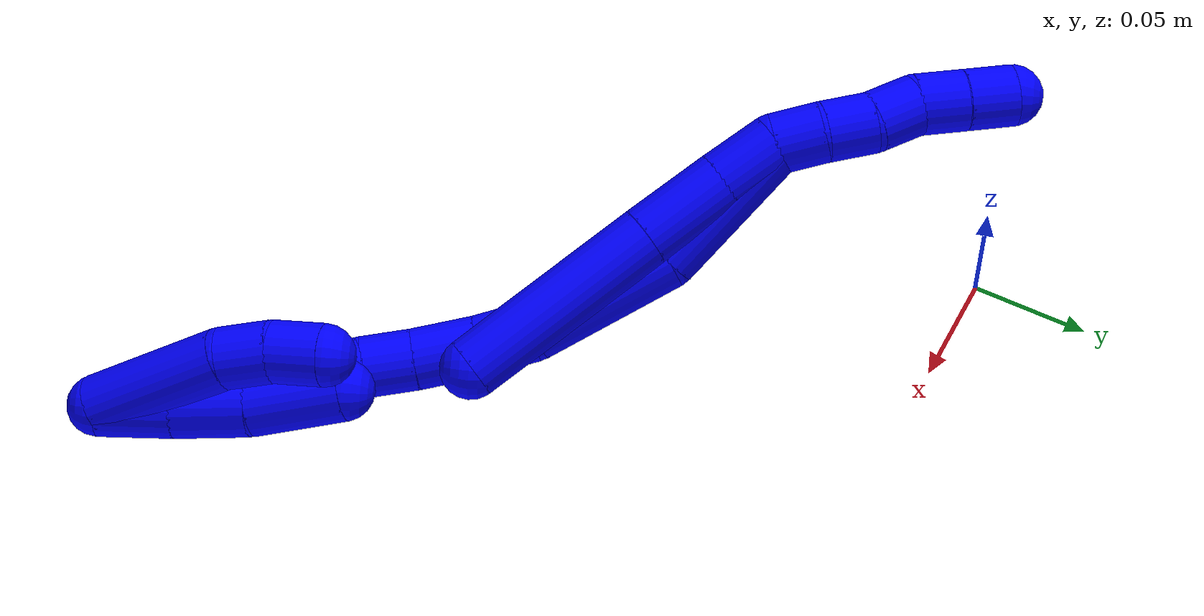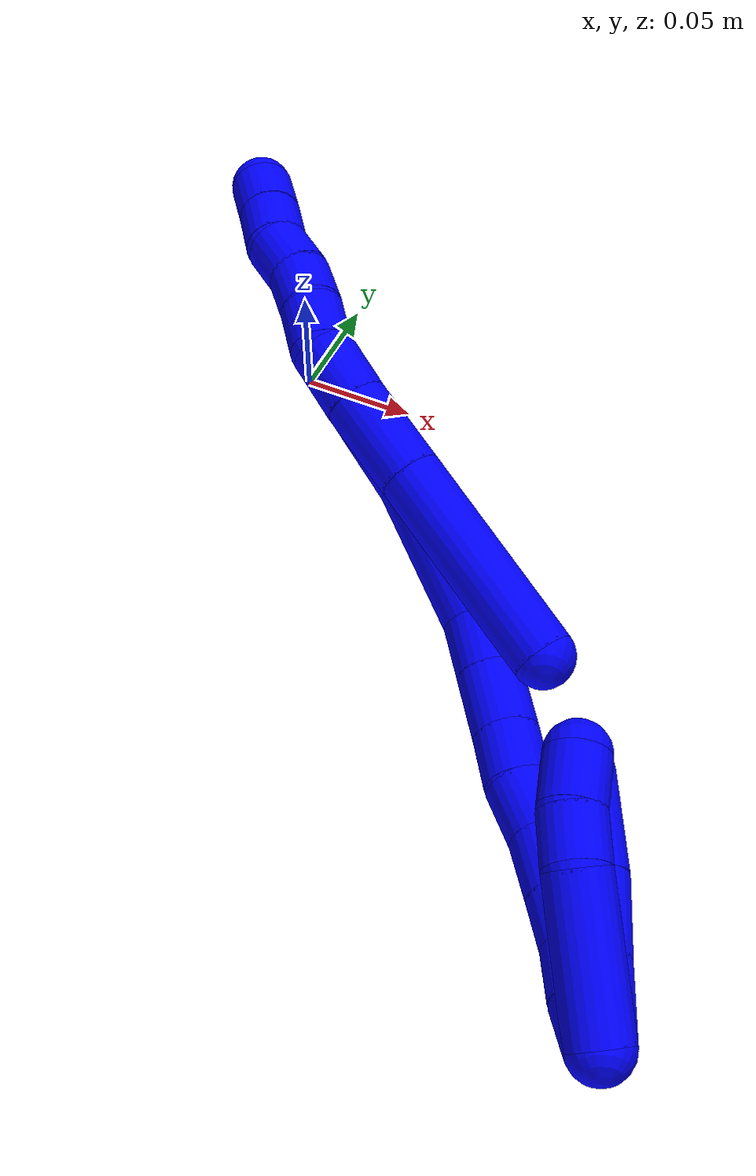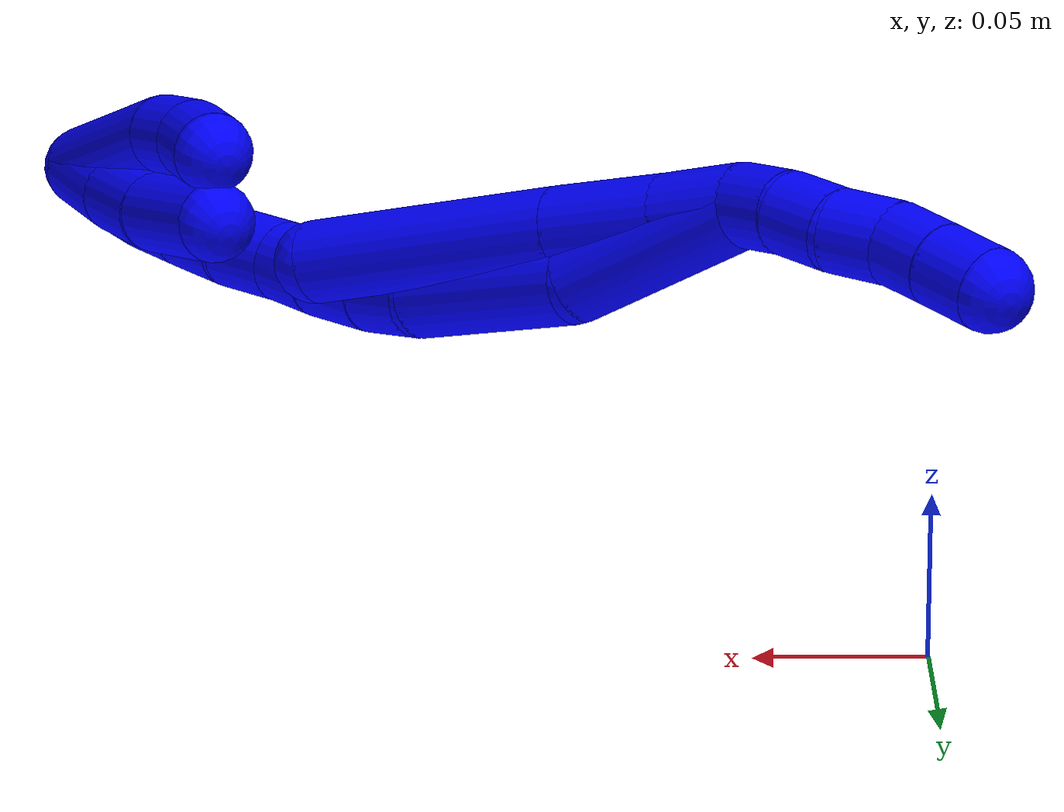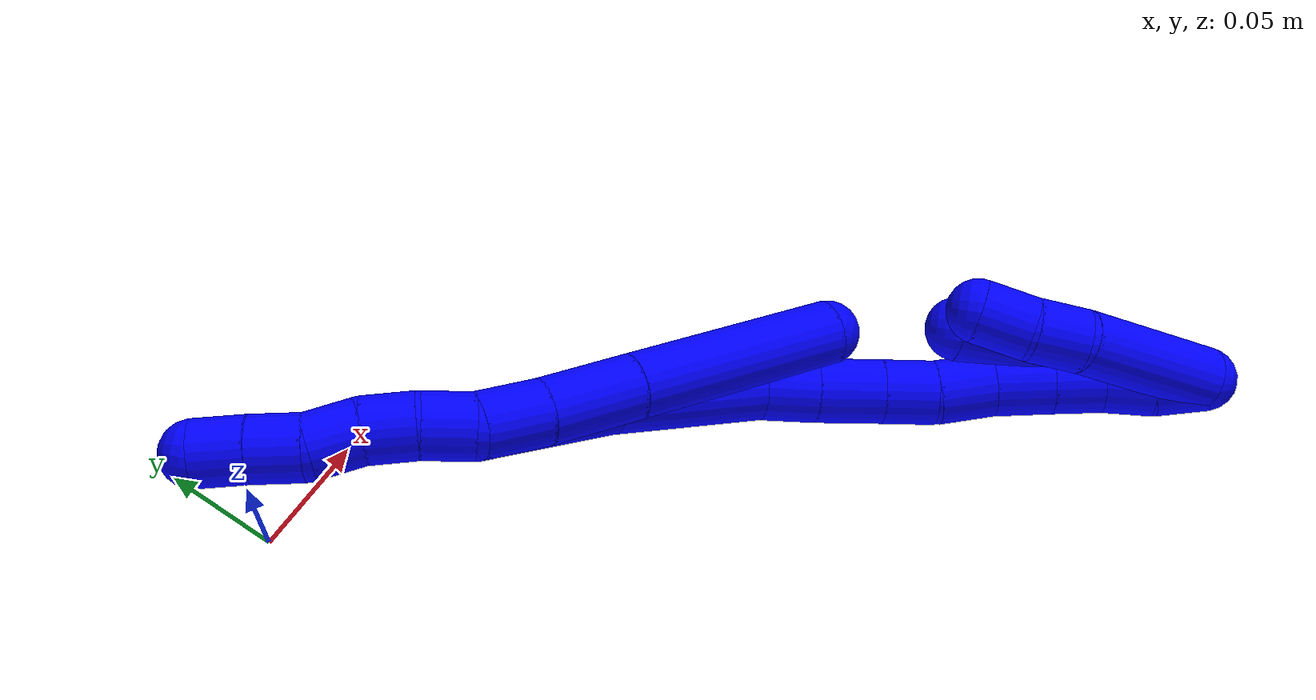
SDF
<sdf version="1.7">
 <world name="default">
  <model name="1">
   <static>0</static>
   <link name="1">
    <collision name="collision-cylinder-e_1_2_8">
     <pose>0.007431 -0.004116 0.010105 0.386776 0.597915 0.120565</pose>
     <geometry><cylinder><radius>0.0125</radius><length>0.026403</length></cylinder></geometry>
     <surface>
      <friction><ode><mu>1.16</mu><mu2>1.16</mu2><slip1>0</slip1><slip2>0</slip2></ode></friction>
      <contact><ode><kp>1e+06</kp><kd>1</kd><max_vel>0</max_vel><min_depth>0.001</min_depth></ode></contact>
     </surface>
    </collision>
    <visual name="visual-cylinder-e_1_2_8">
     <pose>0.007431 -0.004116 0.010105 0.386776 0.597915 0.120565</pose>
     <geometry><cylinder><radius>0.0125</radius><length>0.026403</length></cylinder></geometry>
     <material><ambient>0 0 1 1</ambient></material>
    </visual>
    <collision name="collision-cylinder-e_2_8_9">
     <pose>0.026114 -0.013384 0.034146 0.354175 0.648137 0.120086</pose>
     <geometry><cylinder><radius>0.0125</radius><length>0.037274</length></cylinder></geometry>
     <surface>
      <friction><ode><mu>1.16</mu><mu2>1.16</mu2><slip1>0</slip1><slip2>0</slip2></ode></friction>
      <contact><ode><kp>1e+06</kp><kd>1</kd><max_vel>0</max_vel><min_depth>0.001</min_depth></ode></contact>
     </surface>
    </collision>
    <visual name="visual-cylinder-e_2_8_9">
     <pose>0.026114 -0.013384 0.034146 0.354175 0.648137 0.120086</pose>
     <geometry><cylinder><radius>0.0125</radius><length>0.037274</length></cylinder></geometry>
     <material><ambient>0 0 1 1</ambient></material>
    </visual>
    <collision name="collision-cylinder-e_3_9_6">
     <pose>0.063539 -0.031241 0.079964 0.379162 0.651533 0.129457</pose>
     <geometry><cylinder><radius>0.0125</radius><length>0.086323</length></cylinder></geometry>
     <surface>
      <friction><ode><mu>1.16</mu><mu2>1.16</mu2><slip1>0</slip1><slip2>0</slip2></ode></friction>
      <contact><ode><kp>1e+06</kp><kd>1</kd><max_vel>0</max_vel><min_depth>0.001</min_depth></ode></contact>
     </surface>
    </collision>
    <visual name="visual-cylinder-e_3_9_6">
     <pose>0.063539 -0.031241 0.079964 0.379162 0.651533 0.129457</pose>
     <geometry><cylinder><radius>0.0125</radius><length>0.086323</length></cylinder></geometry>
     <material><ambient>0 0 1 1</ambient></material>
    </visual>
    <collision name="collision-cylinder-e_1_2_10">
     <pose>-0.002648 0.001925 -0.009449 -2.94061 -0.268008 1.85721</pose>
     <geometry><cylinder><radius>0.0125</radius><length>0.02</length></cylinder></geometry>
     <surface>
      <friction><ode><mu>1.16</mu><mu2>1.16</mu2><slip1>0</slip1><slip2>0</slip2></ode></friction>
      <contact><ode><kp>1e+06</kp><kd>1</kd><max_vel>0</max_vel><min_depth>0.001</min_depth></ode></contact>
     </surface>
    </collision>
    <visual name="visual-cylinder-e_1_2_10">
     <pose>-0.002648 0.001925 -0.009449 -2.94061 -0.268008 1.85721</pose>
     <geometry><cylinder><radius>0.0125</radius><length>0.02</length></cylinder></geometry>
     <material><ambient>0 0 1 1</ambient></material>
    </visual>
    <collision name="collision-cylinder-e_2_10_11">
     <pose>-0.008397 0.004219 -0.028398 -3.10277 -0.315279 2.89855</pose>
     <geometry><cylinder><radius>0.0125</radius><length>0.02</length></cylinder></geometry>
     <surface>
      <friction><ode><mu>1.16</mu><mu2>1.16</mu2><slip1>0</slip1><slip2>0</slip2></ode></friction>
      <contact><ode><kp>1e+06</kp><kd>1</kd><max_vel>0</max_vel><min_depth>0.001</min_depth></ode></contact>
     </surface>
    </collision>
    <visual name="visual-cylinder-e_2_10_11">
     <pose>-0.008397 0.004219 -0.028398 -3.10277 -0.315279 2.89855</pose>
     <geometry><cylinder><radius>0.0125</radius><length>0.02</length></cylinder></geometry>
     <material><ambient>0 0 1 1</ambient></material>
    </visual>
    <collision name="collision-cylinder-e_3_11_12">
     <pose>-0.016661 0.004837 -0.046458 -3.11252 -0.542545 3.03714</pose>
     <geometry><cylinder><radius>0.0125</radius><length>0.02</length></cylinder></geometry>
     <surface>
      <friction><ode><mu>1.16</mu><mu2>1.16</mu2><slip1>0</slip1><slip2>0</slip2></ode></friction>
      <contact><ode><kp>1e+06</kp><kd>1</kd><max_vel>0</max_vel><min_depth>0.001</min_depth></ode></contact>
     </surface>
    </collision>
    <visual name="visual-cylinder-e_3_11_12">
     <pose>-0.016661 0.004837 -0.046458 -3.11252 -0.542545 3.03714</pose>
     <geometry><cylinder><radius>0.0125</radius><length>0.02</length></cylinder></geometry>
     <material><ambient>0 0 1 1</ambient></material>
    </visual>
    <collision name="collision-cylinder-e_4_12_13">
     <pose>-0.024052 0.005134 -0.064767 -3.13666 -0.224617 3.09786</pose>
     <geometry><cylinder><radius>0.0125</radius><length>0.02</length></cylinder></geometry>
     <surface>
      <friction><ode><mu>1.16</mu><mu2>1.16</mu2><slip1>0</slip1><slip2>0</slip2></ode></friction>
      <contact><ode><kp>1e+06</kp><kd>1</kd><max_vel>0</max_vel><min_depth>0.001</min_depth></ode></contact>
     </surface>
    </collision>
    <visual name="visual-cylinder-e_4_12_13">
     <pose>-0.024052 0.005134 -0.064767 -3.13666 -0.224617 3.09786</pose>
     <geometry><cylinder><radius>0.0125</radius><length>0.02</length></cylinder></geometry>
     <material><ambient>0 0 1 1</ambient></material>
    </visual>
    <collision name="collision-cylinder-e_5_13_5">
     <pose>-0.028784 0.00488 -0.084192 3.11038 -0.253201 -2.89756</pose>
     <geometry><cylinder><radius>0.0125</radius><length>0.02</length></cylinder></geometry>
     <surface>
      <friction><ode><mu>1.16</mu><mu2>1.16</mu2><slip1>0</slip1><slip2>0</slip2></ode></friction>
      <contact><ode><kp>1e+06</kp><kd>1</kd><max_vel>0</max_vel><min_depth>0.001</min_depth></ode></contact>
     </surface>
    </collision>
    <visual name="visual-cylinder-e_5_13_5">
     <pose>-0.028784 0.00488 -0.084192 3.11038 -0.253201 -2.89756</pose>
     <geometry><cylinder><radius>0.0125</radius><length>0.02</length></cylinder></geometry>
     <material><ambient>0 0 1 1</ambient></material>
    </visual>
    <collision name="collision-cylinder-e_1_2_14">
     <pose>0.018681 -0.01611 0.019169 0.6989 0.640971 0.240743</pose>
     <geometry><cylinder><radius>0.0125</radius><length>0.06248</length></cylinder></geometry>
     <surface>
      <friction><ode><mu>1.16</mu><mu2>1.16</mu2><slip1>0</slip1><slip2>0</slip2></ode></friction>
      <contact><ode><kp>1e+06</kp><kd>1</kd><max_vel>0</max_vel><min_depth>0.001</min_depth></ode></contact>
     </surface>
    </collision>
    <visual name="visual-cylinder-e_1_2_14">
     <pose>0.018681 -0.01611 0.019169 0.6989 0.640971 0.240743</pose>
     <geometry><cylinder><radius>0.0125</radius><length>0.06248</length></cylinder></geometry>
     <material><ambient>0 0 1 1</ambient></material>
    </visual>
    <collision name="collision-cylinder-e_2_14_15">
     <pose>0.051216 -0.041942 0.06382 0.364509 0.470013 0.088197</pose>
     <geometry><cylinder><radius>0.0125</radius><length>0.061184</length></cylinder></geometry>
     <surface>
      <friction><ode><mu>1.16</mu><mu2>1.16</mu2><slip1>0</slip1><slip2>0</slip2></ode></friction>
      <contact><ode><kp>1e+06</kp><kd>1</kd><max_vel>0</max_vel><min_depth>0.001</min_depth></ode></contact>
     </surface>
    </collision>
    <visual name="visual-cylinder-e_2_14_15">
     <pose>0.051216 -0.041942 0.06382 0.364509 0.470013 0.088197</pose>
     <geometry><cylinder><radius>0.0125</radius><length>0.061184</length></cylinder></geometry>
     <material><ambient>0 0 1 1</ambient></material>
    </visual>
    <collision name="collision-cylinder-e_3_15_16">
     <pose>0.06807 -0.054457 0.099789 0.260215 0.26962 0.03549</pose>
     <geometry><cylinder><radius>0.0125</radius><length>0.022516</length></cylinder></geometry>
     <surface>
      <friction><ode><mu>1.16</mu><mu2>1.16</mu2><slip1>0</slip1><slip2>0</slip2></ode></friction>
      <contact><ode><kp>1e+06</kp><kd>1</kd><max_vel>0</max_vel><min_depth>0.001</min_depth></ode></contact>
     </surface>
    </collision>
    <visual name="visual-cylinder-e_3_15_16">
     <pose>0.06807 -0.054457 0.099789 0.260215 0.26962 0.03549</pose>
     <geometry><cylinder><radius>0.0125</radius><length>0.022516</length></cylinder></geometry>
     <material><ambient>0 0 1 1</ambient></material>
    </visual>
    <collision name="collision-cylinder-e_4_16_17">
     <pose>0.07436 -0.059198 0.12293 0.152806 0.251549 0.019358</pose>
     <geometry><cylinder><radius>0.0125</radius><length>0.026442</length></cylinder></geometry>
     <surface>
      <friction><ode><mu>1.16</mu><mu2>1.16</mu2><slip1>0</slip1><slip2>0</slip2></ode></friction>
      <contact><ode><kp>1e+06</kp><kd>1</kd><max_vel>0</max_vel><min_depth>0.001</min_depth></ode></contact>
     </surface>
    </collision>
    <visual name="visual-cylinder-e_4_16_17">
     <pose>0.07436 -0.059198 0.12293 0.152806 0.251549 0.019358</pose>
     <geometry><cylinder><radius>0.0125</radius><length>0.026442</length></cylinder></geometry>
     <material><ambient>0 0 1 1</ambient></material>
    </visual>
    <collision name="collision-cylinder-e_5_17_18">
     <pose>0.079908 -0.062223 0.14574 0.105541 0.217644 0.011541</pose>
     <geometry><cylinder><radius>0.0125</radius><length>0.020916</length></cylinder></geometry>
     <surface>
      <friction><ode><mu>1.16</mu><mu2>1.16</mu2><slip1>0</slip1><slip2>0</slip2></ode></friction>
      <contact><ode><kp>1e+06</kp><kd>1</kd><max_vel>0</max_vel><min_depth>0.001</min_depth></ode></contact>
     </surface>
    </collision>
    <visual name="visual-cylinder-e_5_17_18">
     <pose>0.079908 -0.062223 0.14574 0.105541 0.217644 0.011541</pose>
     <geometry><cylinder><radius>0.0125</radius><length>0.020916</length></cylinder></geometry>
     <material><ambient>0 0 1 1</ambient></material>
    </visual>
    <collision name="collision-cylinder-e_6_18_19">
     <pose>0.086527 -0.064084 0.16634 0.075023 0.394426 0.014997</pose>
     <geometry><cylinder><radius>0.0125</radius><length>0.022691</length></cylinder></geometry>
     <surface>
      <friction><ode><mu>1.16</mu><mu2>1.16</mu2><slip1>0</slip1><slip2>0</slip2></ode></friction>
      <contact><ode><kp>1e+06</kp><kd>1</kd><max_vel>0</max_vel><min_depth>0.001</min_depth></ode></contact>
     </surface>
    </collision>
    <visual name="visual-cylinder-e_6_18_19">
     <pose>0.086527 -0.064084 0.16634 0.075023 0.394426 0.014997</pose>
     <geometry><cylinder><radius>0.0125</radius><length>0.022691</length></cylinder></geometry>
     <material><ambient>0 0 1 1</ambient></material>
    </visual>
    <collision name="collision-cylinder-e_7_19_20">
     <pose>0.093907 -0.06555 0.188093 0.060124 0.260551 0.00788</pose>
     <geometry><cylinder><radius>0.0125</radius><length>0.023449</length></cylinder></geometry>
     <surface>
      <friction><ode><mu>1.16</mu><mu2>1.16</mu2><slip1>0</slip1><slip2>0</slip2></ode></friction>
      <contact><ode><kp>1e+06</kp><kd>1</kd><max_vel>0</max_vel><min_depth>0.001</min_depth></ode></contact>
     </surface>
    </collision>
    <visual name="visual-cylinder-e_7_19_20">
     <pose>0.093907 -0.06555 0.188093 0.060124 0.260551 0.00788</pose>
     <geometry><cylinder><radius>0.0125</radius><length>0.023449</length></cylinder></geometry>
     <material><ambient>0 0 1 1</ambient></material>
    </visual>
    <collision name="collision-cylinder-e_8_20_21">
     <pose>0.099413 -0.06675 0.209205 0.052927 0.247977 0.006598</pose>
     <geometry><cylinder><radius>0.0125</radius><length>0.020255</length></cylinder></geometry>
     <surface>
      <friction><ode><mu>1.16</mu><mu2>1.16</mu2><slip1>0</slip1><slip2>0</slip2></ode></friction>
      <contact><ode><kp>1e+06</kp><kd>1</kd><max_vel>0</max_vel><min_depth>0.001</min_depth></ode></contact>
     </surface>
    </collision>
    <visual name="visual-cylinder-e_8_20_21">
     <pose>0.099413 -0.06675 0.209205 0.052927 0.247977 0.006598</pose>
     <geometry><cylinder><radius>0.0125</radius><length>0.020255</length></cylinder></geometry>
     <material><ambient>0 0 1 1</ambient></material>
    </visual>
    <collision name="collision-cylinder-e_9_21_22">
     <pose>0.103174 -0.067763 0.228938 0.049647 0.12761 0.003173</pose>
     <geometry><cylinder><radius>0.0125</radius><length>0.020045</length></cylinder></geometry>
     <surface>
      <friction><ode><mu>1.16</mu><mu2>1.16</mu2><slip1>0</slip1><slip2>0</slip2></ode></friction>
      <contact><ode><kp>1e+06</kp><kd>1</kd><max_vel>0</max_vel><min_depth>0.001</min_depth></ode></contact>
     </surface>
    </collision>
    <visual name="visual-cylinder-e_9_21_22">
     <pose>0.103174 -0.067763 0.228938 0.049647 0.12761 0.003173</pose>
     <geometry><cylinder><radius>0.0125</radius><length>0.020045</length></cylinder></geometry>
     <material><ambient>0 0 1 1</ambient></material>
    </visual>
    <collision name="collision-cylinder-e_10_22_1">
     <pose>0.106772 -0.067044 0.248529 -0.124798 0.234161 -0.014697</pose>
     <geometry><cylinder><radius>0.0125</radius><length>0.020023</length></cylinder></geometry>
     <surface>
      <friction><ode><mu>1.16</mu><mu2>1.16</mu2><slip1>0</slip1><slip2>0</slip2></ode></friction>
      <contact><ode><kp>1e+06</kp><kd>1</kd><max_vel>0</max_vel><min_depth>0.001</min_depth></ode></contact>
     </surface>
    </collision>
    <visual name="visual-cylinder-e_10_22_1">
     <pose>0.106772 -0.067044 0.248529 -0.124798 0.234161 -0.014697</pose>
     <geometry><cylinder><radius>0.0125</radius><length>0.020023</length></cylinder></geometry>
     <material><ambient>0 0 1 1</ambient></material>
    </visual>
    <collision name="collision-cylinder-e_1_1_23">
     <pose>0.108713 -0.064567 0.242925 -3.05897 -0.024965 0.586543</pose>
     <geometry><cylinder><radius>0.0125</radius><length>0.030648</length></cylinder></geometry>
     <surface>
      <friction><ode><mu>1.16</mu><mu2>1.16</mu2><slip1>0</slip1><slip2>0</slip2></ode></friction>
      <contact><ode><kp>1e+06</kp><kd>1</kd><max_vel>0</max_vel><min_depth>0.001</min_depth></ode></contact>
     </surface>
    </collision>
    <visual name="visual-cylinder-e_1_1_23">
     <pose>0.108713 -0.064567 0.242925 -3.05897 -0.024965 0.586543</pose>
     <geometry><cylinder><radius>0.0125</radius><length>0.030648</length></cylinder></geometry>
     <material><ambient>0 0 1 1</ambient></material>
    </visual>
    <collision name="collision-cylinder-e_2_23_24">
     <pose>0.10806 -0.060448 0.212427 -2.95633 -0.017429 0.187069</pose>
     <geometry><cylinder><radius>0.0125</radius><length>0.030997</length></cylinder></geometry>
     <surface>
      <friction><ode><mu>1.16</mu><mu2>1.16</mu2><slip1>0</slip1><slip2>0</slip2></ode></friction>
      <contact><ode><kp>1e+06</kp><kd>1</kd><max_vel>0</max_vel><min_depth>0.001</min_depth></ode></contact>
     </surface>
    </collision>
    <visual name="visual-cylinder-e_2_23_24">
     <pose>0.10806 -0.060448 0.212427 -2.95633 -0.017429 0.187069</pose>
     <geometry><cylinder><radius>0.0125</radius><length>0.030997</length></cylinder></geometry>
     <material><ambient>0 0 1 1</ambient></material>
    </visual>
    <collision name="collision-cylinder-e_3_24_4">
     <pose>0.10526 -0.052521 0.178875 -2.87145 -0.132308 0.90719</pose>
     <geometry><cylinder><radius>0.0125</radius><length>0.038355</length></cylinder></geometry>
     <surface>
      <friction><ode><mu>1.16</mu><mu2>1.16</mu2><slip1>0</slip1><slip2>0</slip2></ode></friction>
      <contact><ode><kp>1e+06</kp><kd>1</kd><max_vel>0</max_vel><min_depth>0.001</min_depth></ode></contact>
     </surface>
    </collision>
    <visual name="visual-cylinder-e_3_24_4">
     <pose>0.10526 -0.052521 0.178875 -2.87145 -0.132308 0.90719</pose>
     <geometry><cylinder><radius>0.0125</radius><length>0.038355</length></cylinder></geometry>
     <material><ambient>0 0 1 1</ambient></material>
    </visual>
    <collision name="collision-cylinder-e_1_1_25">
     <pose>0.104189 -0.051693 0.233256 -2.62579 -0.169499 0.623147</pose>
     <geometry><cylinder><radius>0.0125</radius><length>0.058164</length></cylinder></geometry>
     <surface>
      <friction><ode><mu>1.16</mu><mu2>1.16</mu2><slip1>0</slip1><slip2>0</slip2></ode></friction>
      <contact><ode><kp>1e+06</kp><kd>1</kd><max_vel>0</max_vel><min_depth>0.001</min_depth></ode></contact>
     </surface>
    </collision>
    <visual name="visual-cylinder-e_1_1_25">
     <pose>0.104189 -0.051693 0.233256 -2.62579 -0.169499 0.623147</pose>
     <geometry><cylinder><radius>0.0125</radius><length>0.058164</length></cylinder></geometry>
     <material><ambient>0 0 1 1</ambient></material>
    </visual>
    <collision name="collision-cylinder-e_2_25_26">
     <pose>0.098332 -0.034763 0.198383 -2.86781 -0.091906 0.64439</pose>
     <geometry><cylinder><radius>0.0125</radius><length>0.020732</length></cylinder></geometry>
     <surface>
      <friction><ode><mu>1.16</mu><mu2>1.16</mu2><slip1>0</slip1><slip2>0</slip2></ode></friction>
      <contact><ode><kp>1e+06</kp><kd>1</kd><max_vel>0</max_vel><min_depth>0.001</min_depth></ode></contact>
     </surface>
    </collision>
    <visual name="visual-cylinder-e_2_25_26">
     <pose>0.098332 -0.034763 0.198383 -2.86781 -0.091906 0.64439</pose>
     <geometry><cylinder><radius>0.0125</radius><length>0.020732</length></cylinder></geometry>
     <material><ambient>0 0 1 1</ambient></material>
    </visual>
    <collision name="collision-cylinder-e_3_26_3">
     <pose>0.098358 -0.029948 0.178135 -2.94769 0.092719 -0.890201</pose>
     <geometry><cylinder><radius>0.0125</radius><length>0.021105</length></cylinder></geometry>
     <surface>
      <friction><ode><mu>1.16</mu><mu2>1.16</mu2><slip1>0</slip1><slip2>0</slip2></ode></friction>
      <contact><ode><kp>1e+06</kp><kd>1</kd><max_vel>0</max_vel><min_depth>0.001</min_depth></ode></contact>
     </surface>
    </collision>
    <visual name="visual-cylinder-e_3_26_3">
     <pose>0.098358 -0.029948 0.178135 -2.94769 0.092719 -0.890201</pose>
     <geometry><cylinder><radius>0.0125</radius><length>0.021105</length></cylinder></geometry>
     <material><ambient>0 0 1 1</ambient></material>
    </visual>
    <collision name="collision-sphere-3">
     <pose>0.099335 -0.027923 0.167825 0 -0 0</pose>
     <geometry><sphere><radius>0.0125</radius></sphere></geometry>
     <surface>
      <friction><ode><mu>1.16</mu><mu2>1.16</mu2><slip1>0</slip1><slip2>0</slip2></ode></friction>
      <contact><ode><kp>1e+06</kp><kd>1</kd><max_vel>0</max_vel><min_depth>0.001</min_depth></ode></contact>
     </surface>
    </collision>
    <visual name="visual-sphere-3">
     <pose>0.099335 -0.027923 0.167825 0 -0 0</pose>
     <geometry><sphere><radius>0.0125</radius></sphere></geometry>
     <material><ambient>0 0 1 1</ambient></material>
    </visual>
    <collision name="collision-sphere-26">
     <pose>0.097381 -0.031973 0.188445 0 -0 0</pose>
     <geometry><sphere><radius>0.0125</radius></sphere></geometry>
     <surface>
      <friction><ode><mu>1.16</mu><mu2>1.16</mu2><slip1>0</slip1><slip2>0</slip2></ode></friction>
      <contact><ode><kp>1e+06</kp><kd>1</kd><max_vel>0</max_vel><min_depth>0.001</min_depth></ode></contact>
     </surface>
    </collision>
    <visual name="visual-sphere-26">
     <pose>0.097381 -0.031973 0.188445 0 -0 0</pose>
     <geometry><sphere><radius>0.0125</radius></sphere></geometry>
     <material><ambient>0 0 1 1</ambient></material>
    </visual>
    <collision name="collision-sphere-25">
     <pose>0.099284 -0.037554 0.20832 0 -0 0</pose>
     <geometry><sphere><radius>0.0125</radius></sphere></geometry>
     <surface>
      <friction><ode><mu>1.16</mu><mu2>1.16</mu2><slip1>0</slip1><slip2>0</slip2></ode></friction>
      <contact><ode><kp>1e+06</kp><kd>1</kd><max_vel>0</max_vel><min_depth>0.001</min_depth></ode></contact>
     </surface>
    </collision>
    <visual name="visual-sphere-25">
     <pose>0.099284 -0.037554 0.20832 0 -0 0</pose>
     <geometry><sphere><radius>0.0125</radius></sphere></geometry>
     <material><ambient>0 0 1 1</ambient></material>
    </visual>
    <collision name="collision-sphere-4">
     <pose>0.10273 -0.047448 0.160555 0 -0 0</pose>
     <geometry><sphere><radius>0.0125</radius></sphere></geometry>
     <surface>
      <friction><ode><mu>1.16</mu><mu2>1.16</mu2><slip1>0</slip1><slip2>0</slip2></ode></friction>
      <contact><ode><kp>1e+06</kp><kd>1</kd><max_vel>0</max_vel><min_depth>0.001</min_depth></ode></contact>
     </surface>
    </collision>
    <visual name="visual-sphere-4">
     <pose>0.10273 -0.047448 0.160555 0 -0 0</pose>
     <geometry><sphere><radius>0.0125</radius></sphere></geometry>
     <material><ambient>0 0 1 1</ambient></material>
    </visual>
    <collision name="collision-sphere-24">
     <pose>0.10779 -0.057594 0.197196 0 -0 0</pose>
     <geometry><sphere><radius>0.0125</radius></sphere></geometry>
     <surface>
      <friction><ode><mu>1.16</mu><mu2>1.16</mu2><slip1>0</slip1><slip2>0</slip2></ode></friction>
      <contact><ode><kp>1e+06</kp><kd>1</kd><max_vel>0</max_vel><min_depth>0.001</min_depth></ode></contact>
     </surface>
    </collision>
    <visual name="visual-sphere-24">
     <pose>0.10779 -0.057594 0.197196 0 -0 0</pose>
     <geometry><sphere><radius>0.0125</radius></sphere></geometry>
     <material><ambient>0 0 1 1</ambient></material>
    </visual>
    <collision name="collision-sphere-23">
     <pose>0.10833 -0.063303 0.227658 0 -0 0</pose>
     <geometry><sphere><radius>0.0125</radius></sphere></geometry>
     <surface>
      <friction><ode><mu>1.16</mu><mu2>1.16</mu2><slip1>0</slip1><slip2>0</slip2></ode></friction>
      <contact><ode><kp>1e+06</kp><kd>1</kd><max_vel>0</max_vel><min_depth>0.001</min_depth></ode></contact>
     </surface>
    </collision>
    <visual name="visual-sphere-23">
     <pose>0.10833 -0.063303 0.227658 0 -0 0</pose>
     <geometry><sphere><radius>0.0125</radius></sphere></geometry>
     <material><ambient>0 0 1 1</ambient></material>
    </visual>
    <collision name="collision-sphere-1">
     <pose>0.109095 -0.065832 0.258192 0 -0 0</pose>
     <geometry><sphere><radius>0.0125</radius></sphere></geometry>
     <surface>
      <friction><ode><mu>1.16</mu><mu2>1.16</mu2><slip1>0</slip1><slip2>0</slip2></ode></friction>
      <contact><ode><kp>1e+06</kp><kd>1</kd><max_vel>0</max_vel><min_depth>0.001</min_depth></ode></contact>
     </surface>
    </collision>
    <visual name="visual-sphere-1">
     <pose>0.109095 -0.065832 0.258192 0 -0 0</pose>
     <geometry><sphere><radius>0.0125</radius></sphere></geometry>
     <material><ambient>0 0 1 1</ambient></material>
    </visual>
    <collision name="collision-sphere-22">
     <pose>0.104449 -0.068256 0.238867 0 -0 0</pose>
     <geometry><sphere><radius>0.0125</radius></sphere></geometry>
     <surface>
      <friction><ode><mu>1.16</mu><mu2>1.16</mu2><slip1>0</slip1><slip2>0</slip2></ode></friction>
      <contact><ode><kp>1e+06</kp><kd>1</kd><max_vel>0</max_vel><min_depth>0.001</min_depth></ode></contact>
     </surface>
    </collision>
    <visual name="visual-sphere-22">
     <pose>0.104449 -0.068256 0.238867 0 -0 0</pose>
     <geometry><sphere><radius>0.0125</radius></sphere></geometry>
     <material><ambient>0 0 1 1</ambient></material>
    </visual>
    <collision name="collision-sphere-21">
     <pose>0.101898 -0.067269 0.219009 0 -0 0</pose>
     <geometry><sphere><radius>0.0125</radius></sphere></geometry>
     <surface>
      <friction><ode><mu>1.16</mu><mu2>1.16</mu2><slip1>0</slip1><slip2>0</slip2></ode></friction>
      <contact><ode><kp>1e+06</kp><kd>1</kd><max_vel>0</max_vel><min_depth>0.001</min_depth></ode></contact>
     </surface>
    </collision>
    <visual name="visual-sphere-21">
     <pose>0.101898 -0.067269 0.219009 0 -0 0</pose>
     <geometry><sphere><radius>0.0125</radius></sphere></geometry>
     <material><ambient>0 0 1 1</ambient></material>
    </visual>
    <collision name="collision-sphere-11">
     <pose>-0.011498 0.004588 -0.037898 0 -0 0</pose>
     <geometry><sphere><radius>0.0125</radius></sphere></geometry>
     <surface>
      <friction><ode><mu>1.16</mu><mu2>1.16</mu2><slip1>0</slip1><slip2>0</slip2></ode></friction>
      <contact><ode><kp>1e+06</kp><kd>1</kd><max_vel>0</max_vel><min_depth>0.001</min_depth></ode></contact>
     </surface>
    </collision>
    <visual name="visual-sphere-11">
     <pose>-0.011498 0.004588 -0.037898 0 -0 0</pose>
     <geometry><sphere><radius>0.0125</radius></sphere></geometry>
     <material><ambient>0 0 1 1</ambient></material>
    </visual>
    <collision name="collision-sphere-10">
     <pose>-0.005296 0.00385 -0.018898 0 -0 0</pose>
     <geometry><sphere><radius>0.0125</radius></sphere></geometry>
     <surface>
      <friction><ode><mu>1.16</mu><mu2>1.16</mu2><slip1>0</slip1><slip2>0</slip2></ode></friction>
      <contact><ode><kp>1e+06</kp><kd>1</kd><max_vel>0</max_vel><min_depth>0.001</min_depth></ode></contact>
     </surface>
    </collision>
    <visual name="visual-sphere-10">
     <pose>-0.005296 0.00385 -0.018898 0 -0 0</pose>
     <geometry><sphere><radius>0.0125</radius></sphere></geometry>
     <material><ambient>0 0 1 1</ambient></material>
    </visual>
    <collision name="collision-sphere-6">
     <pose>0.089712 -0.043944 0.111846 0 -0 0</pose>
     <geometry><sphere><radius>0.0125</radius></sphere></geometry>
     <surface>
      <friction><ode><mu>1.16</mu><mu2>1.16</mu2><slip1>0</slip1><slip2>0</slip2></ode></friction>
      <contact><ode><kp>1e+06</kp><kd>1</kd><max_vel>0</max_vel><min_depth>0.001</min_depth></ode></contact>
     </surface>
    </collision>
    <visual name="visual-sphere-6">
     <pose>0.089712 -0.043944 0.111846 0 -0 0</pose>
     <geometry><sphere><radius>0.0125</radius></sphere></geometry>
     <material><ambient>0 0 1 1</ambient></material>
    </visual>
    <collision name="collision-sphere-9">
     <pose>0.037365 -0.018537 0.048081 0 -0 0</pose>
     <geometry><sphere><radius>0.0125</radius></sphere></geometry>
     <surface>
      <friction><ode><mu>1.16</mu><mu2>1.16</mu2><slip1>0</slip1><slip2>0</slip2></ode></friction>
      <contact><ode><kp>1e+06</kp><kd>1</kd><max_vel>0</max_vel><min_depth>0.001</min_depth></ode></contact>
     </surface>
    </collision>
    <visual name="visual-sphere-9">
     <pose>0.037365 -0.018537 0.048081 0 -0 0</pose>
     <geometry><sphere><radius>0.0125</radius></sphere></geometry>
     <material><ambient>0 0 1 1</ambient></material>
    </visual>
    <collision name="collision-sphere-2">
     <geometry><sphere><radius>0.0125</radius></sphere></geometry>
     <surface>
      <friction><ode><mu>1.16</mu><mu2>1.16</mu2><slip1>0</slip1><slip2>0</slip2></ode></friction>
      <contact><ode><kp>1e+06</kp><kd>1</kd><max_vel>0</max_vel><min_depth>0.001</min_depth></ode></contact>
     </surface>
    </collision>
    <visual name="visual-sphere-2">
     <geometry><sphere><radius>0.0125</radius></sphere></geometry>
     <material><ambient>0 0 1 1</ambient></material>
    </visual>
    <collision name="collision-sphere-19">
     <pose>0.090886 -0.064869 0.176785 0 -0 0</pose>
     <geometry><sphere><radius>0.0125</radius></sphere></geometry>
     <surface>
      <friction><ode><mu>1.16</mu><mu2>1.16</mu2><slip1>0</slip1><slip2>0</slip2></ode></friction>
      <contact><ode><kp>1e+06</kp><kd>1</kd><max_vel>0</max_vel><min_depth>0.001</min_depth></ode></contact>
     </surface>
    </collision>
    <visual name="visual-sphere-19">
     <pose>0.090886 -0.064869 0.176785 0 -0 0</pose>
     <geometry><sphere><radius>0.0125</radius></sphere></geometry>
     <material><ambient>0 0 1 1</ambient></material>
    </visual>
    <collision name="collision-sphere-8">
     <pose>0.014863 -0.008232 0.02021 0 -0 0</pose>
     <geometry><sphere><radius>0.0125</radius></sphere></geometry>
     <surface>
      <friction><ode><mu>1.16</mu><mu2>1.16</mu2><slip1>0</slip1><slip2>0</slip2></ode></friction>
      <contact><ode><kp>1e+06</kp><kd>1</kd><max_vel>0</max_vel><min_depth>0.001</min_depth></ode></contact>
     </surface>
    </collision>
    <visual name="visual-sphere-8">
     <pose>0.014863 -0.008232 0.02021 0 -0 0</pose>
     <geometry><sphere><radius>0.0125</radius></sphere></geometry>
     <material><ambient>0 0 1 1</ambient></material>
    </visual>
    <collision name="collision-sphere-12">
     <pose>-0.021824 0.005086 -0.055018 0 -0 0</pose>
     <geometry><sphere><radius>0.0125</radius></sphere></geometry>
     <surface>
      <friction><ode><mu>1.16</mu><mu2>1.16</mu2><slip1>0</slip1><slip2>0</slip2></ode></friction>
      <contact><ode><kp>1e+06</kp><kd>1</kd><max_vel>0</max_vel><min_depth>0.001</min_depth></ode></contact>
     </surface>
    </collision>
    <visual name="visual-sphere-12">
     <pose>-0.021824 0.005086 -0.055018 0 -0 0</pose>
     <geometry><sphere><radius>0.0125</radius></sphere></geometry>
     <material><ambient>0 0 1 1</ambient></material>
    </visual>
    <collision name="collision-sphere-13">
     <pose>-0.026279 0.005182 -0.074516 0 -0 0</pose>
     <geometry><sphere><radius>0.0125</radius></sphere></geometry>
     <surface>
      <friction><ode><mu>1.16</mu><mu2>1.16</mu2><slip1>0</slip1><slip2>0</slip2></ode></friction>
      <contact><ode><kp>1e+06</kp><kd>1</kd><max_vel>0</max_vel><min_depth>0.001</min_depth></ode></contact>
     </surface>
    </collision>
    <visual name="visual-sphere-13">
     <pose>-0.026279 0.005182 -0.074516 0 -0 0</pose>
     <geometry><sphere><radius>0.0125</radius></sphere></geometry>
     <material><ambient>0 0 1 1</ambient></material>
    </visual>
    <collision name="collision-sphere-5">
     <pose>-0.031289 0.004578 -0.093869 0 -0 0</pose>
     <geometry><sphere><radius>0.0125</radius></sphere></geometry>
     <surface>
      <friction><ode><mu>1.16</mu><mu2>1.16</mu2><slip1>0</slip1><slip2>0</slip2></ode></friction>
      <contact><ode><kp>1e+06</kp><kd>1</kd><max_vel>0</max_vel><min_depth>0.001</min_depth></ode></contact>
     </surface>
    </collision>
    <visual name="visual-sphere-5">
     <pose>-0.031289 0.004578 -0.093869 0 -0 0</pose>
     <geometry><sphere><radius>0.0125</radius></sphere></geometry>
     <material><ambient>0 0 1 1</ambient></material>
    </visual>
    <collision name="collision-sphere-14">
     <pose>0.037361 -0.032219 0.038338 0 -0 0</pose>
     <geometry><sphere><radius>0.0125</radius></sphere></geometry>
     <surface>
      <friction><ode><mu>1.16</mu><mu2>1.16</mu2><slip1>0</slip1><slip2>0</slip2></ode></friction>
      <contact><ode><kp>1e+06</kp><kd>1</kd><max_vel>0</max_vel><min_depth>0.001</min_depth></ode></contact>
     </surface>
    </collision>
    <visual name="visual-sphere-14">
     <pose>0.037361 -0.032219 0.038338 0 -0 0</pose>
     <geometry><sphere><radius>0.0125</radius></sphere></geometry>
     <material><ambient>0 0 1 1</ambient></material>
    </visual>
    <collision name="collision-sphere-15">
     <pose>0.065071 -0.051666 0.089303 0 -0 0</pose>
     <geometry><sphere><radius>0.0125</radius></sphere></geometry>
     <surface>
      <friction><ode><mu>1.16</mu><mu2>1.16</mu2><slip1>0</slip1><slip2>0</slip2></ode></friction>
      <contact><ode><kp>1e+06</kp><kd>1</kd><max_vel>0</max_vel><min_depth>0.001</min_depth></ode></contact>
     </surface>
    </collision>
    <visual name="visual-sphere-15">
     <pose>0.065071 -0.051666 0.089303 0 -0 0</pose>
     <geometry><sphere><radius>0.0125</radius></sphere></geometry>
     <material><ambient>0 0 1 1</ambient></material>
    </visual>
    <collision name="collision-sphere-16">
     <pose>0.071069 -0.057249 0.110275 0 -0 0</pose>
     <geometry><sphere><radius>0.0125</radius></sphere></geometry>
     <surface>
      <friction><ode><mu>1.16</mu><mu2>1.16</mu2><slip1>0</slip1><slip2>0</slip2></ode></friction>
      <contact><ode><kp>1e+06</kp><kd>1</kd><max_vel>0</max_vel><min_depth>0.001</min_depth></ode></contact>
     </surface>
    </collision>
    <visual name="visual-sphere-16">
     <pose>0.071069 -0.057249 0.110275 0 -0 0</pose>
     <geometry><sphere><radius>0.0125</radius></sphere></geometry>
     <material><ambient>0 0 1 1</ambient></material>
    </visual>
    <collision name="collision-sphere-17">
     <pose>0.07765 -0.061147 0.135586 0 -0 0</pose>
     <geometry><sphere><radius>0.0125</radius></sphere></geometry>
     <surface>
      <friction><ode><mu>1.16</mu><mu2>1.16</mu2><slip1>0</slip1><slip2>0</slip2></ode></friction>
      <contact><ode><kp>1e+06</kp><kd>1</kd><max_vel>0</max_vel><min_depth>0.001</min_depth></ode></contact>
     </surface>
    </collision>
    <visual name="visual-sphere-17">
     <pose>0.07765 -0.061147 0.135586 0 -0 0</pose>
     <geometry><sphere><radius>0.0125</radius></sphere></geometry>
     <material><ambient>0 0 1 1</ambient></material>
    </visual>
    <collision name="collision-sphere-18">
     <pose>0.082167 -0.063299 0.155895 0 -0 0</pose>
     <geometry><sphere><radius>0.0125</radius></sphere></geometry>
     <surface>
      <friction><ode><mu>1.16</mu><mu2>1.16</mu2><slip1>0</slip1><slip2>0</slip2></ode></friction>
      <contact><ode><kp>1e+06</kp><kd>1</kd><max_vel>0</max_vel><min_depth>0.001</min_depth></ode></contact>
     </surface>
    </collision>
    <visual name="visual-sphere-18">
     <pose>0.082167 -0.063299 0.155895 0 -0 0</pose>
     <geometry><sphere><radius>0.0125</radius></sphere></geometry>
     <material><ambient>0 0 1 1</ambient></material>
    </visual>
    <collision name="collision-sphere-20">
     <pose>0.096927 -0.06623 0.199401 0 -0 0</pose>
     <geometry><sphere><radius>0.0125</radius></sphere></geometry>
     <surface>
      <friction><ode><mu>1.16</mu><mu2>1.16</mu2><slip1>0</slip1><slip2>0</slip2></ode></friction>
      <contact><ode><kp>1e+06</kp><kd>1</kd><max_vel>0</max_vel><min_depth>0.001</min_depth></ode></contact>
     </surface>
    </collision>
    <visual name="visual-sphere-20">
     <pose>0.096927 -0.06623 0.199401 0 -0 0</pose>
     <geometry><sphere><radius>0.0125</radius></sphere></geometry>
     <material><ambient>0 0 1 1</ambient></material>
    </visual>
    <inertial>
     <pose>0.061057 -0.037094 0.10899 0 -0 0</pose>
     <mass>0.75</mass>
     <inertia>
      <ixx>0.000168</ixx>
      <ixy>0</ixy>
      <ixz>0</ixz>
      <iyy>0.000126</iyy>
      <iyz>0</iyz>
      <izz>-2.7e-05</izz>
     </inertia>
    </inertial>
   </link>
   <pose>0.049988 -0.077473 0.108602 1.52521 0.056731 0.398631</pose>
  </model>
 </world>
</sdf>
